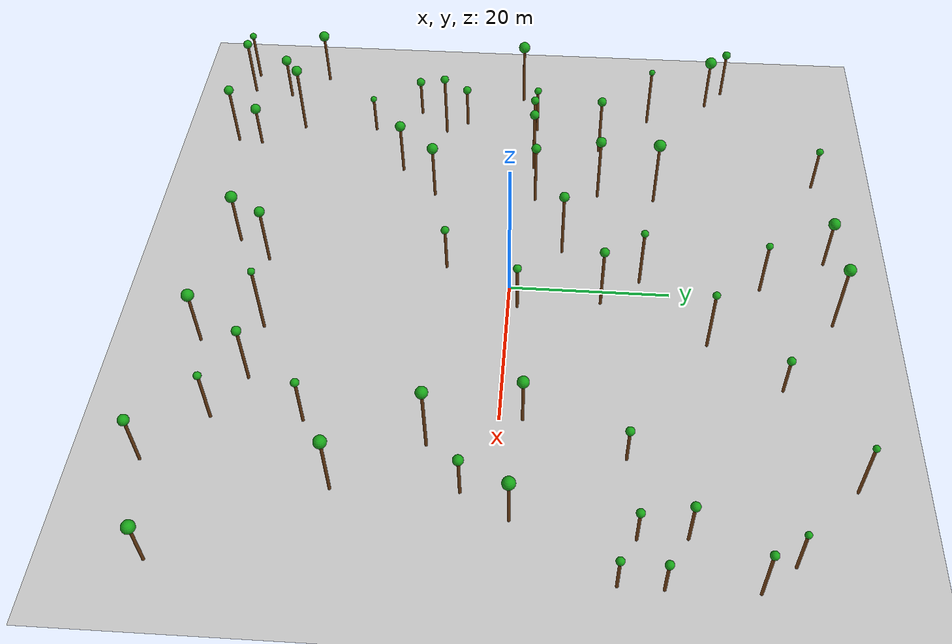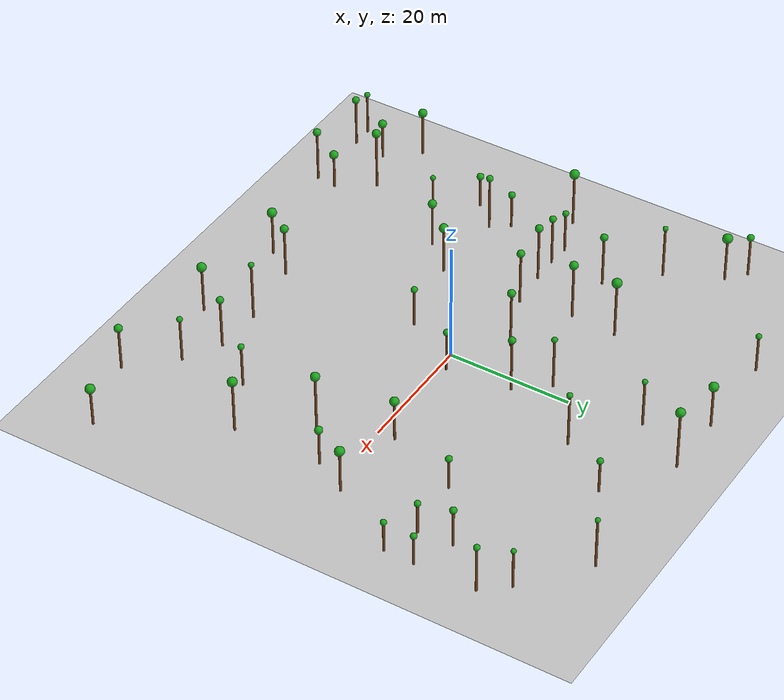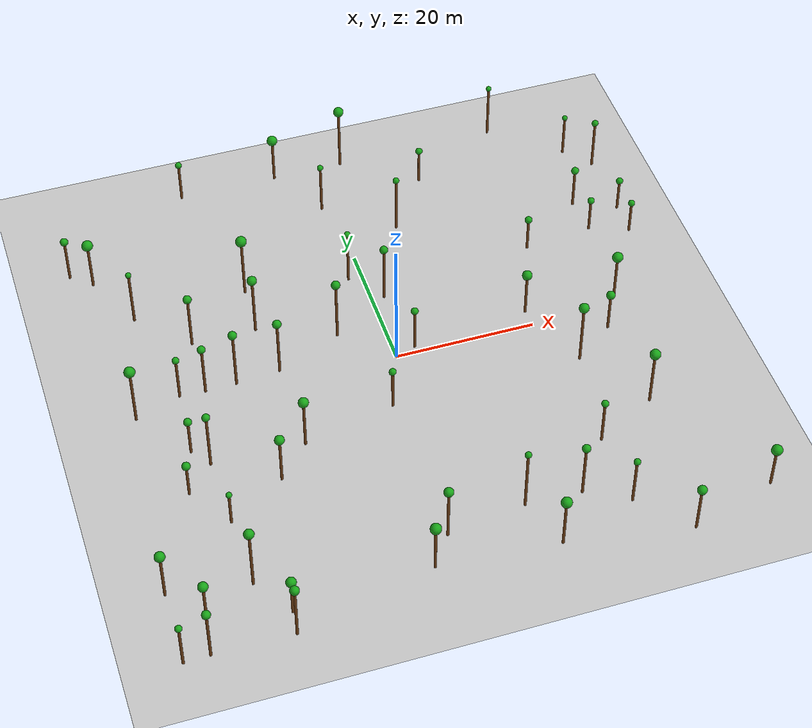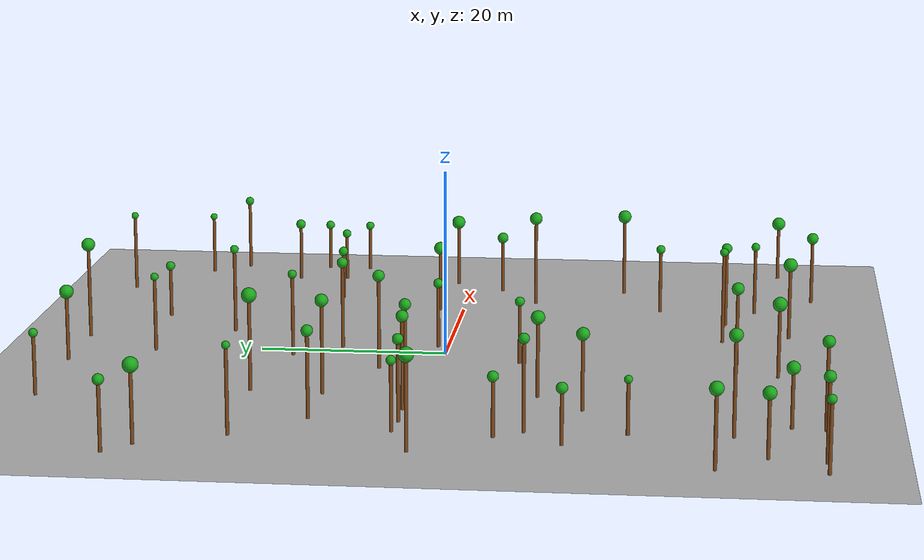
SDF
<sdf version="1.6">
 <world name="forest_world">
  <include><uri>model://sun</uri></include>
  <include><uri>model://ground_plane</uri></include>
  <model name="tree_458">
   <static>true</static>
   <link name="tree_link">
    <collision name="trunk_collision">
     <pose>3.74 39.87 4.98 0 0 0</pose>
     <geometry><cylinder><radius>0.18</radius><length>9.95</length></cylinder></geometry>
    </collision>
    <visual name="trunk_visual">
     <pose>3.74 39.87 4.98 0 0 0</pose>
     <geometry><cylinder><radius>0.18</radius><length>9.95</length></cylinder></geometry>
     <material><ambient>0.35 0.20 0.05 1</ambient><diffuse>0.45 0.25 0.08 1</diffuse></material>
    </visual>
    <visual name="leaf_visual">
     <pose>3.74 39.87 10.32 0 0 0</pose>
     <geometry><sphere><radius>0.73</radius></sphere></geometry>
     <material><ambient>0.05 0.45 0.05 1</ambient><diffuse>0.10 0.65 0.10 1</diffuse></material>
    </visual>
   </link>
  </model>
  <model name="tree_459">
   <static>true</static>
   <link name="tree_link">
    <collision name="trunk_collision">
     <pose>21.65 -33.17 3.78 0 0 0</pose>
     <geometry><cylinder><radius>0.18</radius><length>7.55</length></cylinder></geometry>
    </collision>
    <visual name="trunk_visual">
     <pose>21.65 -33.17 3.78 0 0 0</pose>
     <geometry><cylinder><radius>0.18</radius><length>7.55</length></cylinder></geometry>
     <material><ambient>0.35 0.20 0.05 1</ambient><diffuse>0.45 0.25 0.08 1</diffuse></material>
    </visual>
    <visual name="leaf_visual">
     <pose>21.65 -33.17 7.79 0 0 0</pose>
     <geometry><sphere><radius>0.47</radius></sphere></geometry>
     <material><ambient>0.05 0.45 0.05 1</ambient><diffuse>0.10 0.65 0.10 1</diffuse></material>
    </visual>
   </link>
  </model>
  <model name="tree_460">
   <static>true</static>
   <link name="tree_link">
    <collision name="trunk_collision">
     <pose>21.54 -22.42 3.51 0 0 0</pose>
     <geometry><cylinder><radius>0.18</radius><length>7.03</length></cylinder></geometry>
    </collision>
    <visual name="trunk_visual">
     <pose>21.54 -22.42 3.51 0 0 0</pose>
     <geometry><cylinder><radius>0.18</radius><length>7.03</length></cylinder></geometry>
     <material><ambient>0.35 0.20 0.05 1</ambient><diffuse>0.45 0.25 0.08 1</diffuse></material>
    </visual>
    <visual name="leaf_visual">
     <pose>21.54 -22.42 7.28 0 0 0</pose>
     <geometry><sphere><radius>0.50</radius></sphere></geometry>
     <material><ambient>0.05 0.45 0.05 1</ambient><diffuse>0.10 0.65 0.10 1</diffuse></material>
    </visual>
   </link>
  </model>
  <model name="tree_461">
   <static>true</static>
   <link name="tree_link">
    <collision name="trunk_collision">
     <pose>-30.97 -7.90 2.91 0 0 0</pose>
     <geometry><cylinder><radius>0.18</radius><length>5.82</length></cylinder></geometry>
    </collision>
    <visual name="trunk_visual">
     <pose>-30.97 -7.90 2.91 0 0 0</pose>
     <geometry><cylinder><radius>0.18</radius><length>5.82</length></cylinder></geometry>
     <material><ambient>0.35 0.20 0.05 1</ambient><diffuse>0.45 0.25 0.08 1</diffuse></material>
    </visual>
    <visual name="leaf_visual">
     <pose>-30.97 -7.90 6.10 0 0 0</pose>
     <geometry><sphere><radius>0.56</radius></sphere></geometry>
     <material><ambient>0.05 0.45 0.05 1</ambient><diffuse>0.10 0.65 0.10 1</diffuse></material>
    </visual>
   </link>
  </model>
  <model name="tree_462">
   <static>true</static>
   <link name="tree_link">
    <collision name="trunk_collision">
     <pose>-35.48 -34.30 3.07 0 0 0</pose>
     <geometry><cylinder><radius>0.18</radius><length>6.13</length></cylinder></geometry>
    </collision>
    <visual name="trunk_visual">
     <pose>-35.48 -34.30 3.07 0 0 0</pose>
     <geometry><cylinder><radius>0.18</radius><length>6.13</length></cylinder></geometry>
     <material><ambient>0.35 0.20 0.05 1</ambient><diffuse>0.45 0.25 0.08 1</diffuse></material>
    </visual>
    <visual name="leaf_visual">
     <pose>-35.48 -34.30 6.47 0 0 0</pose>
     <geometry><sphere><radius>0.68</radius></sphere></geometry>
     <material><ambient>0.05 0.45 0.05 1</ambient><diffuse>0.10 0.65 0.10 1</diffuse></material>
    </visual>
   </link>
  </model>
  <model name="tree_463">
   <static>true</static>
   <link name="tree_link">
    <collision name="trunk_collision">
     <pose>39.87 13.51 2.56 0 0 0</pose>
     <geometry><cylinder><radius>0.18</radius><length>5.12</length></cylinder></geometry>
    </collision>
    <visual name="trunk_visual">
     <pose>39.87 13.51 2.56 0 0 0</pose>
     <geometry><cylinder><radius>0.18</radius><length>5.12</length></cylinder></geometry>
     <material><ambient>0.35 0.20 0.05 1</ambient><diffuse>0.45 0.25 0.08 1</diffuse></material>
    </visual>
    <visual name="leaf_visual">
     <pose>39.87 13.51 5.36 0 0 0</pose>
     <geometry><sphere><radius>0.48</radius></sphere></geometry>
     <material><ambient>0.05 0.45 0.05 1</ambient><diffuse>0.10 0.65 0.10 1</diffuse></material>
    </visual>
   </link>
  </model>
  <model name="tree_464">
   <static>true</static>
   <link name="tree_link">
    <collision name="trunk_collision">
     <pose>24.47 14.59 2.65 0 0 0</pose>
     <geometry><cylinder><radius>0.18</radius><length>5.29</length></cylinder></geometry>
    </collision>
    <visual name="trunk_visual">
     <pose>24.47 14.59 2.65 0 0 0</pose>
     <geometry><cylinder><radius>0.18</radius><length>5.29</length></cylinder></geometry>
     <material><ambient>0.35 0.20 0.05 1</ambient><diffuse>0.45 0.25 0.08 1</diffuse></material>
    </visual>
    <visual name="leaf_visual">
     <pose>24.47 14.59 5.56 0 0 0</pose>
     <geometry><sphere><radius>0.53</radius></sphere></geometry>
     <material><ambient>0.05 0.45 0.05 1</ambient><diffuse>0.10 0.65 0.10 1</diffuse></material>
    </visual>
   </link>
  </model>
  <model name="tree_465">
   <static>true</static>
   <link name="tree_link">
    <collision name="trunk_collision">
     <pose>-22.19 1.96 4.67 0 0 0</pose>
     <geometry><cylinder><radius>0.18</radius><length>9.33</length></cylinder></geometry>
    </collision>
    <visual name="trunk_visual">
     <pose>-22.19 1.96 4.67 0 0 0</pose>
     <geometry><cylinder><radius>0.18</radius><length>9.33</length></cylinder></geometry>
     <material><ambient>0.35 0.20 0.05 1</ambient><diffuse>0.45 0.25 0.08 1</diffuse></material>
    </visual>
    <visual name="leaf_visual">
     <pose>-22.19 1.96 9.64 0 0 0</pose>
     <geometry><sphere><radius>0.62</radius></sphere></geometry>
     <material><ambient>0.05 0.45 0.05 1</ambient><diffuse>0.10 0.65 0.10 1</diffuse></material>
    </visual>
   </link>
  </model>
  <model name="tree_466">
   <static>true</static>
   <link name="tree_link">
    <collision name="trunk_collision">
     <pose>27.17 39.85 4.25 0 0 0</pose>
     <geometry><cylinder><radius>0.18</radius><length>8.49</length></cylinder></geometry>
    </collision>
    <visual name="trunk_visual">
     <pose>27.17 39.85 4.25 0 0 0</pose>
     <geometry><cylinder><radius>0.18</radius><length>8.49</length></cylinder></geometry>
     <material><ambient>0.35 0.20 0.05 1</ambient><diffuse>0.45 0.25 0.08 1</diffuse></material>
    </visual>
    <visual name="leaf_visual">
     <pose>27.17 39.85 8.69 0 0 0</pose>
     <geometry><sphere><radius>0.40</radius></sphere></geometry>
     <material><ambient>0.05 0.45 0.05 1</ambient><diffuse>0.10 0.65 0.10 1</diffuse></material>
    </visual>
   </link>
  </model>
  <model name="tree_467">
   <static>true</static>
   <link name="tree_link">
    <collision name="trunk_collision">
     <pose>39.81 28.34 3.94 0 0 0</pose>
     <geometry><cylinder><radius>0.18</radius><length>7.88</length></cylinder></geometry>
    </collision>
    <visual name="trunk_visual">
     <pose>39.81 28.34 3.94 0 0 0</pose>
     <geometry><cylinder><radius>0.18</radius><length>7.88</length></cylinder></geometry>
     <material><ambient>0.35 0.20 0.05 1</ambient><diffuse>0.45 0.25 0.08 1</diffuse></material>
    </visual>
    <visual name="leaf_visual">
     <pose>39.81 28.34 8.13 0 0 0</pose>
     <geometry><sphere><radius>0.49</radius></sphere></geometry>
     <material><ambient>0.05 0.45 0.05 1</ambient><diffuse>0.10 0.65 0.10 1</diffuse></material>
    </visual>
   </link>
  </model>
  <model name="tree_468">
   <static>true</static>
   <link name="tree_link">
    <collision name="trunk_collision">
     <pose>33.98 21.11 3.18 0 0 0</pose>
     <geometry><cylinder><radius>0.18</radius><length>6.37</length></cylinder></geometry>
    </collision>
    <visual name="trunk_visual">
     <pose>33.98 21.11 3.18 0 0 0</pose>
     <geometry><cylinder><radius>0.18</radius><length>6.37</length></cylinder></geometry>
     <material><ambient>0.35 0.20 0.05 1</ambient><diffuse>0.45 0.25 0.08 1</diffuse></material>
    </visual>
    <visual name="leaf_visual">
     <pose>33.98 21.11 6.64 0 0 0</pose>
     <geometry><sphere><radius>0.55</radius></sphere></geometry>
     <material><ambient>0.05 0.45 0.05 1</ambient><diffuse>0.10 0.65 0.10 1</diffuse></material>
    </visual>
   </link>
  </model>
  <model name="tree_469">
   <static>true</static>
   <link name="tree_link">
    <collision name="trunk_collision">
     <pose>-1.98 16.30 4.33 0 0 0</pose>
     <geometry><cylinder><radius>0.18</radius><length>8.67</length></cylinder></geometry>
    </collision>
    <visual name="trunk_visual">
     <pose>-1.98 16.30 4.33 0 0 0</pose>
     <geometry><cylinder><radius>0.18</radius><length>8.67</length></cylinder></geometry>
     <material><ambient>0.35 0.20 0.05 1</ambient><diffuse>0.45 0.25 0.08 1</diffuse></material>
    </visual>
    <visual name="leaf_visual">
     <pose>-1.98 16.30 8.90 0 0 0</pose>
     <geometry><sphere><radius>0.47</radius></sphere></geometry>
     <material><ambient>0.05 0.45 0.05 1</ambient><diffuse>0.10 0.65 0.10 1</diffuse></material>
    </visual>
   </link>
  </model>
  <model name="tree_470">
   <static>true</static>
   <link name="tree_link">
    <collision name="trunk_collision">
     <pose>36.58 32.21 3.28 0 0 0</pose>
     <geometry><cylinder><radius>0.18</radius><length>6.57</length></cylinder></geometry>
    </collision>
    <visual name="trunk_visual">
     <pose>36.58 32.21 3.28 0 0 0</pose>
     <geometry><cylinder><radius>0.18</radius><length>6.57</length></cylinder></geometry>
     <material><ambient>0.35 0.20 0.05 1</ambient><diffuse>0.45 0.25 0.08 1</diffuse></material>
    </visual>
    <visual name="leaf_visual">
     <pose>36.58 32.21 6.77 0 0 0</pose>
     <geometry><sphere><radius>0.40</radius></sphere></geometry>
     <material><ambient>0.05 0.45 0.05 1</ambient><diffuse>0.10 0.65 0.10 1</diffuse></material>
    </visual>
   </link>
  </model>
  <model name="tree_471">
   <static>true</static>
   <link name="tree_link">
    <collision name="trunk_collision">
     <pose>-6.48 39.91 3.53 0 0 0</pose>
     <geometry><cylinder><radius>0.18</radius><length>7.06</length></cylinder></geometry>
    </collision>
    <visual name="trunk_visual">
     <pose>-6.48 39.91 3.53 0 0 0</pose>
     <geometry><cylinder><radius>0.18</radius><length>7.06</length></cylinder></geometry>
     <material><ambient>0.35 0.20 0.05 1</ambient><diffuse>0.45 0.25 0.08 1</diffuse></material>
    </visual>
    <visual name="leaf_visual">
     <pose>-6.48 39.91 7.44 0 0 0</pose>
     <geometry><sphere><radius>0.75</radius></sphere></geometry>
     <material><ambient>0.05 0.45 0.05 1</ambient><diffuse>0.10 0.65 0.10 1</diffuse></material>
    </visual>
   </link>
  </model>
  <model name="tree_472">
   <static>true</static>
   <link name="tree_link">
    <collision name="trunk_collision">
     <pose>27.80 -39.74 3.63 0 0 0</pose>
     <geometry><cylinder><radius>0.18</radius><length>7.26</length></cylinder></geometry>
    </collision>
    <visual name="trunk_visual">
     <pose>27.80 -39.74 3.63 0 0 0</pose>
     <geometry><cylinder><radius>0.18</radius><length>7.26</length></cylinder></geometry>
     <material><ambient>0.35 0.20 0.05 1</ambient><diffuse>0.45 0.25 0.08 1</diffuse></material>
    </visual>
    <visual name="leaf_visual">
     <pose>27.80 -39.74 7.58 0 0 0</pose>
     <geometry><sphere><radius>0.65</radius></sphere></geometry>
     <material><ambient>0.05 0.45 0.05 1</ambient><diffuse>0.10 0.65 0.10 1</diffuse></material>
    </visual>
   </link>
  </model>
  <model name="tree_473">
   <static>true</static>
   <link name="tree_link">
    <collision name="trunk_collision">
     <pose>-39.58 -29.36 3.77 0 0 0</pose>
     <geometry><cylinder><radius>0.18</radius><length>7.54</length></cylinder></geometry>
    </collision>
    <visual name="trunk_visual">
     <pose>-39.58 -29.36 3.77 0 0 0</pose>
     <geometry><cylinder><radius>0.18</radius><length>7.54</length></cylinder></geometry>
     <material><ambient>0.35 0.20 0.05 1</ambient><diffuse>0.45 0.25 0.08 1</diffuse></material>
    </visual>
    <visual name="leaf_visual">
     <pose>-39.58 -29.36 7.90 0 0 0</pose>
     <geometry><sphere><radius>0.71</radius></sphere></geometry>
     <material><ambient>0.05 0.45 0.05 1</ambient><diffuse>0.10 0.65 0.10 1</diffuse></material>
    </visual>
   </link>
  </model>
  <model name="tree_474">
   <static>true</static>
   <link name="tree_link">
    <collision name="trunk_collision">
     <pose>-36.32 -39.81 4.08 0 0 0</pose>
     <geometry><cylinder><radius>0.18</radius><length>8.16</length></cylinder></geometry>
    </collision>
    <visual name="trunk_visual">
     <pose>-36.32 -39.81 4.08 0 0 0</pose>
     <geometry><cylinder><radius>0.18</radius><length>8.16</length></cylinder></geometry>
     <material><ambient>0.35 0.20 0.05 1</ambient><diffuse>0.45 0.25 0.08 1</diffuse></material>
    </visual>
    <visual name="leaf_visual">
     <pose>-36.32 -39.81 8.46 0 0 0</pose>
     <geometry><sphere><radius>0.59</radius></sphere></geometry>
     <material><ambient>0.05 0.45 0.05 1</ambient><diffuse>0.10 0.65 0.10 1</diffuse></material>
    </visual>
   </link>
  </model>
  <model name="tree_475">
   <static>true</static>
   <link name="tree_link">
    <collision name="trunk_collision">
     <pose>-36.89 26.22 3.75 0 0 0</pose>
     <geometry><cylinder><radius>0.18</radius><length>7.49</length></cylinder></geometry>
    </collision>
    <visual name="trunk_visual">
     <pose>-36.89 26.22 3.75 0 0 0</pose>
     <geometry><cylinder><radius>0.18</radius><length>7.49</length></cylinder></geometry>
     <material><ambient>0.35 0.20 0.05 1</ambient><diffuse>0.45 0.25 0.08 1</diffuse></material>
    </visual>
    <visual name="leaf_visual">
     <pose>-36.89 26.22 7.89 0 0 0</pose>
     <geometry><sphere><radius>0.79</radius></sphere></geometry>
     <material><ambient>0.05 0.45 0.05 1</ambient><diffuse>0.10 0.65 0.10 1</diffuse></material>
    </visual>
   </link>
  </model>
  <model name="tree_476">
   <static>true</static>
   <link name="tree_link">
    <collision name="trunk_collision">
     <pose>32.94 1.92 3.57 0 0 0</pose>
     <geometry><cylinder><radius>0.18</radius><length>7.13</length></cylinder></geometry>
    </collision>
    <visual name="trunk_visual">
     <pose>32.94 1.92 3.57 0 0 0</pose>
     <geometry><cylinder><radius>0.18</radius><length>7.13</length></cylinder></geometry>
     <material><ambient>0.35 0.20 0.05 1</ambient><diffuse>0.45 0.25 0.08 1</diffuse></material>
    </visual>
    <visual name="leaf_visual">
     <pose>32.94 1.92 7.51 0 0 0</pose>
     <geometry><sphere><radius>0.76</radius></sphere></geometry>
     <material><ambient>0.05 0.45 0.05 1</ambient><diffuse>0.10 0.65 0.10 1</diffuse></material>
    </visual>
   </link>
  </model>
  <model name="tree_477">
   <static>true</static>
   <link name="tree_link">
    <collision name="trunk_collision">
     <pose>-28.64 -31.07 4.94 0 0 0</pose>
     <geometry><cylinder><radius>0.18</radius><length>9.88</length></cylinder></geometry>
    </collision>
    <visual name="trunk_visual">
     <pose>-28.64 -31.07 4.94 0 0 0</pose>
     <geometry><cylinder><radius>0.18</radius><length>9.88</length></cylinder></geometry>
     <material><ambient>0.35 0.20 0.05 1</ambient><diffuse>0.45 0.25 0.08 1</diffuse></material>
    </visual>
    <visual name="leaf_visual">
     <pose>-28.64 -31.07 10.22 0 0 0</pose>
     <geometry><sphere><radius>0.69</radius></sphere></geometry>
     <material><ambient>0.05 0.45 0.05 1</ambient><diffuse>0.10 0.65 0.10 1</diffuse></material>
    </visual>
   </link>
  </model>
  <model name="tree_478">
   <static>true</static>
   <link name="tree_link">
    <collision name="trunk_collision">
     <pose>-28.81 -20.83 2.69 0 0 0</pose>
     <geometry><cylinder><radius>0.18</radius><length>5.38</length></cylinder></geometry>
    </collision>
    <visual name="trunk_visual">
     <pose>-28.81 -20.83 2.69 0 0 0</pose>
     <geometry><cylinder><radius>0.18</radius><length>5.38</length></cylinder></geometry>
     <material><ambient>0.35 0.20 0.05 1</ambient><diffuse>0.45 0.25 0.08 1</diffuse></material>
    </visual>
    <visual name="leaf_visual">
     <pose>-28.81 -20.83 5.59 0 0 0</pose>
     <geometry><sphere><radius>0.42</radius></sphere></geometry>
     <material><ambient>0.05 0.45 0.05 1</ambient><diffuse>0.10 0.65 0.10 1</diffuse></material>
    </visual>
   </link>
  </model>
  <model name="tree_479">
   <static>true</static>
   <link name="tree_link">
    <collision name="trunk_collision">
     <pose>-26.22 10.90 4.31 0 0 0</pose>
     <geometry><cylinder><radius>0.18</radius><length>8.63</length></cylinder></geometry>
    </collision>
    <visual name="trunk_visual">
     <pose>-26.22 10.90 4.31 0 0 0</pose>
     <geometry><cylinder><radius>0.18</radius><length>8.63</length></cylinder></geometry>
     <material><ambient>0.35 0.20 0.05 1</ambient><diffuse>0.45 0.25 0.08 1</diffuse></material>
    </visual>
    <visual name="leaf_visual">
     <pose>-26.22 10.90 8.93 0 0 0</pose>
     <geometry><sphere><radius>0.60</radius></sphere></geometry>
     <material><ambient>0.05 0.45 0.05 1</ambient><diffuse>0.10 0.65 0.10 1</diffuse></material>
    </visual>
   </link>
  </model>
  <model name="tree_480">
   <static>true</static>
   <link name="tree_link">
    <collision name="trunk_collision">
     <pose>30.26 -17.92 4.39 0 0 0</pose>
     <geometry><cylinder><radius>0.18</radius><length>8.79</length></cylinder></geometry>
    </collision>
    <visual name="trunk_visual">
     <pose>30.26 -17.92 4.39 0 0 0</pose>
     <geometry><cylinder><radius>0.18</radius><length>8.79</length></cylinder></geometry>
     <material><ambient>0.35 0.20 0.05 1</ambient><diffuse>0.45 0.25 0.08 1</diffuse></material>
    </visual>
    <visual name="leaf_visual">
     <pose>30.26 -17.92 9.17 0 0 0</pose>
     <geometry><sphere><radius>0.75</radius></sphere></geometry>
     <material><ambient>0.05 0.45 0.05 1</ambient><diffuse>0.10 0.65 0.10 1</diffuse></material>
    </visual>
   </link>
  </model>
  <model name="tree_481">
   <static>true</static>
   <link name="tree_link">
    <collision name="trunk_collision">
     <pose>-15.95 2.45 4.50 0 0 0</pose>
     <geometry><cylinder><radius>0.18</radius><length>8.99</length></cylinder></geometry>
    </collision>
    <visual name="trunk_visual">
     <pose>-15.95 2.45 4.50 0 0 0</pose>
     <geometry><cylinder><radius>0.18</radius><length>8.99</length></cylinder></geometry>
     <material><ambient>0.35 0.20 0.05 1</ambient><diffuse>0.45 0.25 0.08 1</diffuse></material>
    </visual>
    <visual name="leaf_visual">
     <pose>-15.95 2.45 9.30 0 0 0</pose>
     <geometry><sphere><radius>0.62</radius></sphere></geometry>
     <material><ambient>0.05 0.45 0.05 1</ambient><diffuse>0.10 0.65 0.10 1</diffuse></material>
    </visual>
   </link>
  </model>
  <model name="tree_482">
   <static>true</static>
   <link name="tree_link">
    <collision name="trunk_collision">
     <pose>-1.56 31.41 3.96 0 0 0</pose>
     <geometry><cylinder><radius>0.18</radius><length>7.91</length></cylinder></geometry>
    </collision>
    <visual name="trunk_visual">
     <pose>-1.56 31.41 3.96 0 0 0</pose>
     <geometry><cylinder><radius>0.18</radius><length>7.91</length></cylinder></geometry>
     <material><ambient>0.35 0.20 0.05 1</ambient><diffuse>0.45 0.25 0.08 1</diffuse></material>
    </visual>
    <visual name="leaf_visual">
     <pose>-1.56 31.41 8.13 0 0 0</pose>
     <geometry><sphere><radius>0.43</radius></sphere></geometry>
     <material><ambient>0.05 0.45 0.05 1</ambient><diffuse>0.10 0.65 0.10 1</diffuse></material>
    </visual>
   </link>
  </model>
  <model name="tree_483">
   <static>true</static>
   <link name="tree_link">
    <collision name="trunk_collision">
     <pose>34.40 15.59 2.63 0 0 0</pose>
     <geometry><cylinder><radius>0.18</radius><length>5.26</length></cylinder></geometry>
    </collision>
    <visual name="trunk_visual">
     <pose>34.40 15.59 2.63 0 0 0</pose>
     <geometry><cylinder><radius>0.18</radius><length>5.26</length></cylinder></geometry>
     <material><ambient>0.35 0.20 0.05 1</ambient><diffuse>0.45 0.25 0.08 1</diffuse></material>
    </visual>
    <visual name="leaf_visual">
     <pose>34.40 15.59 5.51 0 0 0</pose>
     <geometry><sphere><radius>0.50</radius></sphere></geometry>
     <material><ambient>0.05 0.45 0.05 1</ambient><diffuse>0.10 0.65 0.10 1</diffuse></material>
    </visual>
   </link>
  </model>
  <model name="tree_484">
   <static>true</static>
   <link name="tree_link">
    <collision name="trunk_collision">
     <pose>29.82 -3.63 3.05 0 0 0</pose>
     <geometry><cylinder><radius>0.18</radius><length>6.10</length></cylinder></geometry>
    </collision>
    <visual name="trunk_visual">
     <pose>29.82 -3.63 3.05 0 0 0</pose>
     <geometry><cylinder><radius>0.18</radius><length>6.10</length></cylinder></geometry>
     <material><ambient>0.35 0.20 0.05 1</ambient><diffuse>0.45 0.25 0.08 1</diffuse></material>
    </visual>
    <visual name="leaf_visual">
     <pose>29.82 -3.63 6.41 0 0 0</pose>
     <geometry><sphere><radius>0.62</radius></sphere></geometry>
     <material><ambient>0.05 0.45 0.05 1</ambient><diffuse>0.10 0.65 0.10 1</diffuse></material>
    </visual>
   </link>
  </model>
  <model name="tree_485">
   <static>true</static>
   <link name="tree_link">
    <collision name="trunk_collision">
     <pose>-26.56 1.85 4.07 0 0 0</pose>
     <geometry><cylinder><radius>0.18</radius><length>8.14</length></cylinder></geometry>
    </collision>
    <visual name="trunk_visual">
     <pose>-26.56 1.85 4.07 0 0 0</pose>
     <geometry><cylinder><radius>0.18</radius><length>8.14</length></cylinder></geometry>
     <material><ambient>0.35 0.20 0.05 1</ambient><diffuse>0.45 0.25 0.08 1</diffuse></material>
    </visual>
    <visual name="leaf_visual">
     <pose>-26.56 1.85 8.42 0 0 0</pose>
     <geometry><sphere><radius>0.56</radius></sphere></geometry>
     <material><ambient>0.05 0.45 0.05 1</ambient><diffuse>0.10 0.65 0.10 1</diffuse></material>
    </visual>
   </link>
  </model>
  <model name="tree_486">
   <static>true</static>
   <link name="tree_link">
    <collision name="trunk_collision">
     <pose>-3.09 -8.25 3.26 0 0 0</pose>
     <geometry><cylinder><radius>0.18</radius><length>6.52</length></cylinder></geometry>
    </collision>
    <visual name="trunk_visual">
     <pose>-3.09 -8.25 3.26 0 0 0</pose>
     <geometry><cylinder><radius>0.18</radius><length>6.52</length></cylinder></geometry>
     <material><ambient>0.35 0.20 0.05 1</ambient><diffuse>0.45 0.25 0.08 1</diffuse></material>
    </visual>
    <visual name="leaf_visual">
     <pose>-3.09 -8.25 6.78 0 0 0</pose>
     <geometry><sphere><radius>0.51</radius></sphere></geometry>
     <material><ambient>0.05 0.45 0.05 1</ambient><diffuse>0.10 0.65 0.10 1</diffuse></material>
    </visual>
   </link>
  </model>
  <model name="tree_487">
   <static>true</static>
   <link name="tree_link">
    <collision name="trunk_collision">
     <pose>39.89 -36.01 3.15 0 0 0</pose>
     <geometry><cylinder><radius>0.18</radius><length>6.30</length></cylinder></geometry>
    </collision>
    <visual name="trunk_visual">
     <pose>39.89 -36.01 3.15 0 0 0</pose>
     <geometry><cylinder><radius>0.18</radius><length>6.30</length></cylinder></geometry>
     <material><ambient>0.35 0.20 0.05 1</ambient><diffuse>0.45 0.25 0.08 1</diffuse></material>
    </visual>
    <visual name="leaf_visual">
     <pose>39.89 -36.01 6.68 0 0 0</pose>
     <geometry><sphere><radius>0.76</radius></sphere></geometry>
     <material><ambient>0.05 0.45 0.05 1</ambient><diffuse>0.10 0.65 0.10 1</diffuse></material>
    </visual>
   </link>
  </model>
  <model name="tree_488">
   <static>true</static>
   <link name="tree_link">
    <collision name="trunk_collision">
     <pose>39.96 18.42 2.54 0 0 0</pose>
     <geometry><cylinder><radius>0.18</radius><length>5.07</length></cylinder></geometry>
    </collision>
    <visual name="trunk_visual">
     <pose>39.96 18.42 2.54 0 0 0</pose>
     <geometry><cylinder><radius>0.18</radius><length>5.07</length></cylinder></geometry>
     <material><ambient>0.35 0.20 0.05 1</ambient><diffuse>0.45 0.25 0.08 1</diffuse></material>
    </visual>
    <visual name="leaf_visual">
     <pose>39.96 18.42 5.32 0 0 0</pose>
     <geometry><sphere><radius>0.50</radius></sphere></geometry>
     <material><ambient>0.05 0.45 0.05 1</ambient><diffuse>0.10 0.65 0.10 1</diffuse></material>
    </visual>
   </link>
  </model>
  <model name="tree_489">
   <static>true</static>
   <link name="tree_link">
    <collision name="trunk_collision">
     <pose>-17.15 10.82 4.74 0 0 0</pose>
     <geometry><cylinder><radius>0.18</radius><length>9.47</length></cylinder></geometry>
    </collision>
    <visual name="trunk_visual">
     <pose>-17.15 10.82 4.74 0 0 0</pose>
     <geometry><cylinder><radius>0.18</radius><length>9.47</length></cylinder></geometry>
     <material><ambient>0.35 0.20 0.05 1</ambient><diffuse>0.45 0.25 0.08 1</diffuse></material>
    </visual>
    <visual name="leaf_visual">
     <pose>-17.15 10.82 9.81 0 0 0</pose>
     <geometry><sphere><radius>0.68</radius></sphere></geometry>
     <material><ambient>0.05 0.45 0.05 1</ambient><diffuse>0.10 0.65 0.10 1</diffuse></material>
    </visual>
   </link>
  </model>
  <model name="tree_490">
   <static>true</static>
   <link name="tree_link">
    <collision name="trunk_collision">
     <pose>-32.86 -14.67 2.69 0 0 0</pose>
     <geometry><cylinder><radius>0.18</radius><length>5.38</length></cylinder></geometry>
    </collision>
    <visual name="trunk_visual">
     <pose>-32.86 -14.67 2.69 0 0 0</pose>
     <geometry><cylinder><radius>0.18</radius><length>5.38</length></cylinder></geometry>
     <material><ambient>0.35 0.20 0.05 1</ambient><diffuse>0.45 0.25 0.08 1</diffuse></material>
    </visual>
    <visual name="leaf_visual">
     <pose>-32.86 -14.67 5.67 0 0 0</pose>
     <geometry><sphere><radius>0.58</radius></sphere></geometry>
     <material><ambient>0.05 0.45 0.05 1</ambient><diffuse>0.10 0.65 0.10 1</diffuse></material>
    </visual>
   </link>
  </model>
  <model name="tree_491">
   <static>true</static>
   <link name="tree_link">
    <collision name="trunk_collision">
     <pose>1.85 11.43 4.55 0 0 0</pose>
     <geometry><cylinder><radius>0.18</radius><length>9.11</length></cylinder></geometry>
    </collision>
    <visual name="trunk_visual">
     <pose>1.85 11.43 4.55 0 0 0</pose>
     <geometry><cylinder><radius>0.18</radius><length>9.11</length></cylinder></geometry>
     <material><ambient>0.35 0.20 0.05 1</ambient><diffuse>0.45 0.25 0.08 1</diffuse></material>
    </visual>
    <visual name="leaf_visual">
     <pose>1.85 11.43 9.40 0 0 0</pose>
     <geometry><sphere><radius>0.58</radius></sphere></geometry>
     <material><ambient>0.05 0.45 0.05 1</ambient><diffuse>0.10 0.65 0.10 1</diffuse></material>
    </visual>
   </link>
  </model>
  <model name="tree_492">
   <static>true</static>
   <link name="tree_link">
    <collision name="trunk_collision">
     <pose>-20.66 39.90 3.15 0 0 0</pose>
     <geometry><cylinder><radius>0.18</radius><length>6.29</length></cylinder></geometry>
    </collision>
    <visual name="trunk_visual">
     <pose>-20.66 39.90 3.15 0 0 0</pose>
     <geometry><cylinder><radius>0.18</radius><length>6.29</length></cylinder></geometry>
     <material><ambient>0.35 0.20 0.05 1</ambient><diffuse>0.45 0.25 0.08 1</diffuse></material>
    </visual>
    <visual name="leaf_visual">
     <pose>-20.66 39.90 6.53 0 0 0</pose>
     <geometry><sphere><radius>0.47</radius></sphere></geometry>
     <material><ambient>0.05 0.45 0.05 1</ambient><diffuse>0.10 0.65 0.10 1</diffuse></material>
    </visual>
   </link>
  </model>
  <model name="tree_493">
   <static>true</static>
   <link name="tree_link">
    <collision name="trunk_collision">
     <pose>-39.75 28.70 3.43 0 0 0</pose>
     <geometry><cylinder><radius>0.18</radius><length>6.85</length></cylinder></geometry>
    </collision>
    <visual name="trunk_visual">
     <pose>-39.75 28.70 3.43 0 0 0</pose>
     <geometry><cylinder><radius>0.18</radius><length>6.85</length></cylinder></geometry>
     <material><ambient>0.35 0.20 0.05 1</ambient><diffuse>0.45 0.25 0.08 1</diffuse></material>
    </visual>
    <visual name="leaf_visual">
     <pose>-39.75 28.70 7.14 0 0 0</pose>
     <geometry><sphere><radius>0.57</radius></sphere></geometry>
     <material><ambient>0.05 0.45 0.05 1</ambient><diffuse>0.10 0.65 0.10 1</diffuse></material>
    </visual>
   </link>
  </model>
  <model name="tree_494">
   <static>true</static>
   <link name="tree_link">
    <collision name="trunk_collision">
     <pose>-30.10 2.10 3.48 0 0 0</pose>
     <geometry><cylinder><radius>0.18</radius><length>6.95</length></cylinder></geometry>
    </collision>
    <visual name="trunk_visual">
     <pose>-30.10 2.10 3.48 0 0 0</pose>
     <geometry><cylinder><radius>0.18</radius><length>6.95</length></cylinder></geometry>
     <material><ambient>0.35 0.20 0.05 1</ambient><diffuse>0.45 0.25 0.08 1</diffuse></material>
    </visual>
    <visual name="leaf_visual">
     <pose>-30.10 2.10 7.20 0 0 0</pose>
     <geometry><sphere><radius>0.49</radius></sphere></geometry>
     <material><ambient>0.05 0.45 0.05 1</ambient><diffuse>0.10 0.65 0.10 1</diffuse></material>
    </visual>
   </link>
  </model>
  <model name="tree_495">
   <static>true</static>
   <link name="tree_link">
    <collision name="trunk_collision">
     <pose>-16.15 -11.13 3.99 0 0 0</pose>
     <geometry><cylinder><radius>0.18</radius><length>7.98</length></cylinder></geometry>
    </collision>
    <visual name="trunk_visual">
     <pose>-16.15 -11.13 3.99 0 0 0</pose>
     <geometry><cylinder><radius>0.18</radius><length>7.98</length></cylinder></geometry>
     <material><ambient>0.35 0.20 0.05 1</ambient><diffuse>0.45 0.25 0.08 1</diffuse></material>
    </visual>
    <visual name="leaf_visual">
     <pose>-16.15 -11.13 8.34 0 0 0</pose>
     <geometry><sphere><radius>0.72</radius></sphere></geometry>
     <material><ambient>0.05 0.45 0.05 1</ambient><diffuse>0.10 0.65 0.10 1</diffuse></material>
    </visual>
   </link>
  </model>
  <model name="tree_496">
   <static>true</static>
   <link name="tree_link">
    <collision name="trunk_collision">
     <pose>7.71 24.35 4.52 0 0 0</pose>
     <geometry><cylinder><radius>0.18</radius><length>9.04</length></cylinder></geometry>
    </collision>
    <visual name="trunk_visual">
     <pose>7.71 24.35 4.52 0 0 0</pose>
     <geometry><cylinder><radius>0.18</radius><length>9.04</length></cylinder></geometry>
     <material><ambient>0.35 0.20 0.05 1</ambient><diffuse>0.45 0.25 0.08 1</diffuse></material>
    </visual>
    <visual name="leaf_visual">
     <pose>7.71 24.35 9.28 0 0 0</pose>
     <geometry><sphere><radius>0.47</radius></sphere></geometry>
     <material><ambient>0.05 0.45 0.05 1</ambient><diffuse>0.10 0.65 0.10 1</diffuse></material>
    </visual>
   </link>
  </model>
  <model name="tree_497">
   <static>true</static>
   <link name="tree_link">
    <collision name="trunk_collision">
     <pose>23.98 -7.96 4.85 0 0 0</pose>
     <geometry><cylinder><radius>0.18</radius><length>9.70</length></cylinder></geometry>
    </collision>
    <visual name="trunk_visual">
     <pose>23.98 -7.96 4.85 0 0 0</pose>
     <geometry><cylinder><radius>0.18</radius><length>9.70</length></cylinder></geometry>
     <material><ambient>0.35 0.20 0.05 1</ambient><diffuse>0.45 0.25 0.08 1</diffuse></material>
    </visual>
    <visual name="leaf_visual">
     <pose>23.98 -7.96 10.05 0 0 0</pose>
     <geometry><sphere><radius>0.71</radius></sphere></geometry>
     <material><ambient>0.05 0.45 0.05 1</ambient><diffuse>0.10 0.65 0.10 1</diffuse></material>
    </visual>
   </link>
  </model>
  <model name="tree_498">
   <static>true</static>
   <link name="tree_link">
    <collision name="trunk_collision">
     <pose>13.96 32.92 2.76 0 0 0</pose>
     <geometry><cylinder><radius>0.18</radius><length>5.51</length></cylinder></geometry>
    </collision>
    <visual name="trunk_visual">
     <pose>13.96 32.92 2.76 0 0 0</pose>
     <geometry><cylinder><radius>0.18</radius><length>5.51</length></cylinder></geometry>
     <material><ambient>0.35 0.20 0.05 1</ambient><diffuse>0.45 0.25 0.08 1</diffuse></material>
    </visual>
    <visual name="leaf_visual">
     <pose>13.96 32.92 5.77 0 0 0</pose>
     <geometry><sphere><radius>0.51</radius></sphere></geometry>
     <material><ambient>0.05 0.45 0.05 1</ambient><diffuse>0.10 0.65 0.10 1</diffuse></material>
    </visual>
   </link>
  </model>
  <model name="tree_499">
   <static>true</static>
   <link name="tree_link">
    <collision name="trunk_collision">
     <pose>-2.96 -31.21 4.19 0 0 0</pose>
     <geometry><cylinder><radius>0.18</radius><length>8.37</length></cylinder></geometry>
    </collision>
    <visual name="trunk_visual">
     <pose>-2.96 -31.21 4.19 0 0 0</pose>
     <geometry><cylinder><radius>0.18</radius><length>8.37</length></cylinder></geometry>
     <material><ambient>0.35 0.20 0.05 1</ambient><diffuse>0.45 0.25 0.08 1</diffuse></material>
    </visual>
    <visual name="leaf_visual">
     <pose>-2.96 -31.21 8.70 0 0 0</pose>
     <geometry><sphere><radius>0.66</radius></sphere></geometry>
     <material><ambient>0.05 0.45 0.05 1</ambient><diffuse>0.10 0.65 0.10 1</diffuse></material>
    </visual>
   </link>
  </model>
  <model name="tree_500">
   <static>true</static>
   <link name="tree_link">
    <collision name="trunk_collision">
     <pose>8.11 -29.65 4.94 0 0 0</pose>
     <geometry><cylinder><radius>0.18</radius><length>9.88</length></cylinder></geometry>
    </collision>
    <visual name="trunk_visual">
     <pose>8.11 -29.65 4.94 0 0 0</pose>
     <geometry><cylinder><radius>0.18</radius><length>9.88</length></cylinder></geometry>
     <material><ambient>0.35 0.20 0.05 1</ambient><diffuse>0.45 0.25 0.08 1</diffuse></material>
    </visual>
    <visual name="leaf_visual">
     <pose>8.11 -29.65 10.11 0 0 0</pose>
     <geometry><sphere><radius>0.45</radius></sphere></geometry>
     <material><ambient>0.05 0.45 0.05 1</ambient><diffuse>0.10 0.65 0.10 1</diffuse></material>
    </visual>
   </link>
  </model>
  <model name="tree_501">
   <static>true</static>
   <link name="tree_link">
    <collision name="trunk_collision">
     <pose>-6.57 6.36 4.85 0 0 0</pose>
     <geometry><cylinder><radius>0.18</radius><length>9.69</length></cylinder></geometry>
    </collision>
    <visual name="trunk_visual">
     <pose>-6.57 6.36 4.85 0 0 0</pose>
     <geometry><cylinder><radius>0.18</radius><length>9.69</length></cylinder></geometry>
     <material><ambient>0.35 0.20 0.05 1</ambient><diffuse>0.45 0.25 0.08 1</diffuse></material>
    </visual>
    <visual name="leaf_visual">
     <pose>-6.57 6.36 10.01 0 0 0</pose>
     <geometry><sphere><radius>0.63</radius></sphere></geometry>
     <material><ambient>0.05 0.45 0.05 1</ambient><diffuse>0.10 0.65 0.10 1</diffuse></material>
    </visual>
   </link>
  </model>
  <model name="tree_502">
   <static>true</static>
   <link name="tree_link">
    <collision name="trunk_collision">
     <pose>-29.00 -10.72 4.58 0 0 0</pose>
     <geometry><cylinder><radius>0.18</radius><length>9.17</length></cylinder></geometry>
    </collision>
    <visual name="trunk_visual">
     <pose>-29.00 -10.72 4.58 0 0 0</pose>
     <geometry><cylinder><radius>0.18</radius><length>9.17</length></cylinder></geometry>
     <material><ambient>0.35 0.20 0.05 1</ambient><diffuse>0.45 0.25 0.08 1</diffuse></material>
    </visual>
    <visual name="leaf_visual">
     <pose>-29.00 -10.72 9.44 0 0 0</pose>
     <geometry><sphere><radius>0.55</radius></sphere></geometry>
     <material><ambient>0.05 0.45 0.05 1</ambient><diffuse>0.10 0.65 0.10 1</diffuse></material>
    </visual>
   </link>
  </model>
  <model name="tree_503">
   <static>true</static>
   <link name="tree_link">
    <collision name="trunk_collision">
     <pose>-39.81 -39.91 3.51 0 0 0</pose>
     <geometry><cylinder><radius>0.18</radius><length>7.02</length></cylinder></geometry>
    </collision>
    <visual name="trunk_visual">
     <pose>-39.81 -39.91 3.51 0 0 0</pose>
     <geometry><cylinder><radius>0.18</radius><length>7.02</length></cylinder></geometry>
     <material><ambient>0.35 0.20 0.05 1</ambient><diffuse>0.45 0.25 0.08 1</diffuse></material>
    </visual>
    <visual name="leaf_visual">
     <pose>-39.81 -39.91 7.26 0 0 0</pose>
     <geometry><sphere><radius>0.47</radius></sphere></geometry>
     <material><ambient>0.05 0.45 0.05 1</ambient><diffuse>0.10 0.65 0.10 1</diffuse></material>
    </visual>
   </link>
  </model>
  <model name="tree_504">
   <static>true</static>
   <link name="tree_link">
    <collision name="trunk_collision">
     <pose>-16.68 18.36 4.83 0 0 0</pose>
     <geometry><cylinder><radius>0.18</radius><length>9.66</length></cylinder></geometry>
    </collision>
    <visual name="trunk_visual">
     <pose>-16.68 18.36 4.83 0 0 0</pose>
     <geometry><cylinder><radius>0.18</radius><length>9.66</length></cylinder></geometry>
     <material><ambient>0.35 0.20 0.05 1</ambient><diffuse>0.45 0.25 0.08 1</diffuse></material>
    </visual>
    <visual name="leaf_visual">
     <pose>-16.68 18.36 10.05 0 0 0</pose>
     <geometry><sphere><radius>0.78</radius></sphere></geometry>
     <material><ambient>0.05 0.45 0.05 1</ambient><diffuse>0.10 0.65 0.10 1</diffuse></material>
    </visual>
   </link>
  </model>
  <model name="tree_505">
   <static>true</static>
   <link name="tree_link">
    <collision name="trunk_collision">
     <pose>10.63 -36.91 3.96 0 0 0</pose>
     <geometry><cylinder><radius>0.18</radius><length>7.92</length></cylinder></geometry>
    </collision>
    <visual name="trunk_visual">
     <pose>10.63 -36.91 3.96 0 0 0</pose>
     <geometry><cylinder><radius>0.18</radius><length>7.92</length></cylinder></geometry>
     <material><ambient>0.35 0.20 0.05 1</ambient><diffuse>0.45 0.25 0.08 1</diffuse></material>
    </visual>
    <visual name="leaf_visual">
     <pose>10.63 -36.91 8.29 0 0 0</pose>
     <geometry><sphere><radius>0.75</radius></sphere></geometry>
     <material><ambient>0.05 0.45 0.05 1</ambient><diffuse>0.10 0.65 0.10 1</diffuse></material>
    </visual>
   </link>
  </model>
  <model name="tree_506">
   <static>true</static>
   <link name="tree_link">
    <collision name="trunk_collision">
     <pose>-36.63 -0.16 4.58 0 0 0</pose>
     <geometry><cylinder><radius>0.18</radius><length>9.16</length></cylinder></geometry>
    </collision>
    <visual name="trunk_visual">
     <pose>-36.63 -0.16 4.58 0 0 0</pose>
     <geometry><cylinder><radius>0.18</radius><length>9.16</length></cylinder></geometry>
     <material><ambient>0.35 0.20 0.05 1</ambient><diffuse>0.45 0.25 0.08 1</diffuse></material>
    </visual>
    <visual name="leaf_visual">
     <pose>-36.63 -0.16 9.54 0 0 0</pose>
     <geometry><sphere><radius>0.77</radius></sphere></geometry>
     <material><ambient>0.05 0.45 0.05 1</ambient><diffuse>0.10 0.65 0.10 1</diffuse></material>
    </visual>
   </link>
  </model>
  <model name="tree_507">
   <static>true</static>
   <link name="tree_link">
    <collision name="trunk_collision">
     <pose>19.86 2.71 3.44 0 0 0</pose>
     <geometry><cylinder><radius>0.18</radius><length>6.88</length></cylinder></geometry>
    </collision>
    <visual name="trunk_visual">
     <pose>19.86 2.71 3.44 0 0 0</pose>
     <geometry><cylinder><radius>0.18</radius><length>6.88</length></cylinder></geometry>
     <material><ambient>0.35 0.20 0.05 1</ambient><diffuse>0.45 0.25 0.08 1</diffuse></material>
    </visual>
    <visual name="leaf_visual">
     <pose>19.86 2.71 7.23 0 0 0</pose>
     <geometry><sphere><radius>0.71</radius></sphere></geometry>
     <material><ambient>0.05 0.45 0.05 1</ambient><diffuse>0.10 0.65 0.10 1</diffuse></material>
    </visual>
   </link>
  </model>
  <model name="tree_508">
   <static>true</static>
   <link name="tree_link">
    <collision name="trunk_collision">
     <pose>-32.83 17.75 4.40 0 0 0</pose>
     <geometry><cylinder><radius>0.18</radius><length>8.80</length></cylinder></geometry>
    </collision>
    <visual name="trunk_visual">
     <pose>-32.83 17.75 4.40 0 0 0</pose>
     <geometry><cylinder><radius>0.18</radius><length>8.80</length></cylinder></geometry>
     <material><ambient>0.35 0.20 0.05 1</ambient><diffuse>0.45 0.25 0.08 1</diffuse></material>
    </visual>
    <visual name="leaf_visual">
     <pose>-32.83 17.75 9.00 0 0 0</pose>
     <geometry><sphere><radius>0.41</radius></sphere></geometry>
     <material><ambient>0.05 0.45 0.05 1</ambient><diffuse>0.10 0.65 0.10 1</diffuse></material>
    </visual>
   </link>
  </model>
  <model name="tree_509">
   <static>true</static>
   <link name="tree_link">
    <collision name="trunk_collision">
     <pose>-25.42 -40.00 4.34 0 0 0</pose>
     <geometry><cylinder><radius>0.18</radius><length>8.69</length></cylinder></geometry>
    </collision>
    <visual name="trunk_visual">
     <pose>-25.42 -40.00 4.34 0 0 0</pose>
     <geometry><cylinder><radius>0.18</radius><length>8.69</length></cylinder></geometry>
     <material><ambient>0.35 0.20 0.05 1</ambient><diffuse>0.45 0.25 0.08 1</diffuse></material>
    </visual>
    <visual name="leaf_visual">
     <pose>-25.42 -40.00 9.00 0 0 0</pose>
     <geometry><sphere><radius>0.63</radius></sphere></geometry>
     <material><ambient>0.05 0.45 0.05 1</ambient><diffuse>0.10 0.65 0.10 1</diffuse></material>
    </visual>
   </link>
  </model>
  <model name="tree_510">
   <static>true</static>
   <link name="tree_link">
    <collision name="trunk_collision">
     <pose>15.93 -29.92 4.26 0 0 0</pose>
     <geometry><cylinder><radius>0.18</radius><length>8.51</length></cylinder></geometry>
    </collision>
    <visual name="trunk_visual">
     <pose>15.93 -29.92 4.26 0 0 0</pose>
     <geometry><cylinder><radius>0.18</radius><length>8.51</length></cylinder></geometry>
     <material><ambient>0.35 0.20 0.05 1</ambient><diffuse>0.45 0.25 0.08 1</diffuse></material>
    </visual>
    <visual name="leaf_visual">
     <pose>15.93 -29.92 8.80 0 0 0</pose>
     <geometry><sphere><radius>0.58</radius></sphere></geometry>
     <material><ambient>0.05 0.45 0.05 1</ambient><diffuse>0.10 0.65 0.10 1</diffuse></material>
    </visual>
   </link>
  </model>
  <model name="tree_511">
   <static>true</static>
   <link name="tree_link">
    <collision name="trunk_collision">
     <pose>-25.04 -36.69 2.91 0 0 0</pose>
     <geometry><cylinder><radius>0.18</radius><length>5.83</length></cylinder></geometry>
    </collision>
    <visual name="trunk_visual">
     <pose>-25.04 -36.69 2.91 0 0 0</pose>
     <geometry><cylinder><radius>0.18</radius><length>5.83</length></cylinder></geometry>
     <material><ambient>0.35 0.20 0.05 1</ambient><diffuse>0.45 0.25 0.08 1</diffuse></material>
    </visual>
    <visual name="leaf_visual">
     <pose>-25.04 -36.69 6.18 0 0 0</pose>
     <geometry><sphere><radius>0.69</radius></sphere></geometry>
     <material><ambient>0.05 0.45 0.05 1</ambient><diffuse>0.10 0.65 0.10 1</diffuse></material>
    </visual>
   </link>
  </model>
  <model name="tree_512">
   <static>true</static>
   <link name="tree_link">
    <collision name="trunk_collision">
     <pose>-6.10 -35.57 3.76 0 0 0</pose>
     <geometry><cylinder><radius>0.18</radius><length>7.52</length></cylinder></geometry>
    </collision>
    <visual name="trunk_visual">
     <pose>-6.10 -35.57 3.76 0 0 0</pose>
     <geometry><cylinder><radius>0.18</radius><length>7.52</length></cylinder></geometry>
     <material><ambient>0.35 0.20 0.05 1</ambient><diffuse>0.45 0.25 0.08 1</diffuse></material>
    </visual>
    <visual name="leaf_visual">
     <pose>-6.10 -35.57 7.90 0 0 0</pose>
     <geometry><sphere><radius>0.76</radius></sphere></geometry>
     <material><ambient>0.05 0.45 0.05 1</ambient><diffuse>0.10 0.65 0.10 1</diffuse></material>
    </visual>
   </link>
  </model>
  <model name="tree_513">
   <static>true</static>
   <link name="tree_link">
    <collision name="trunk_collision">
     <pose>3.01 1.11 3.41 0 0 0</pose>
     <geometry><cylinder><radius>0.18</radius><length>6.83</length></cylinder></geometry>
    </collision>
    <visual name="trunk_visual">
     <pose>3.01 1.11 3.41 0 0 0</pose>
     <geometry><cylinder><radius>0.18</radius><length>6.83</length></cylinder></geometry>
     <material><ambient>0.35 0.20 0.05 1</ambient><diffuse>0.45 0.25 0.08 1</diffuse></material>
    </visual>
    <visual name="leaf_visual">
     <pose>3.01 1.11 7.09 0 0 0</pose>
     <geometry><sphere><radius>0.52</radius></sphere></geometry>
     <material><ambient>0.05 0.45 0.05 1</ambient><diffuse>0.10 0.65 0.10 1</diffuse></material>
    </visual>
   </link>
  </model>
  <model name="tree_514">
   <static>true</static>
   <link name="tree_link">
    <collision name="trunk_collision">
     <pose>-20.73 -15.96 3.79 0 0 0</pose>
     <geometry><cylinder><radius>0.18</radius><length>7.58</length></cylinder></geometry>
    </collision>
    <visual name="trunk_visual">
     <pose>-20.73 -15.96 3.79 0 0 0</pose>
     <geometry><cylinder><radius>0.18</radius><length>7.58</length></cylinder></geometry>
     <material><ambient>0.35 0.20 0.05 1</ambient><diffuse>0.45 0.25 0.08 1</diffuse></material>
    </visual>
    <visual name="leaf_visual">
     <pose>-20.73 -15.96 7.92 0 0 0</pose>
     <geometry><sphere><radius>0.68</radius></sphere></geometry>
     <material><ambient>0.05 0.45 0.05 1</ambient><diffuse>0.10 0.65 0.10 1</diffuse></material>
    </visual>
   </link>
  </model>
 </world>
</sdf>
